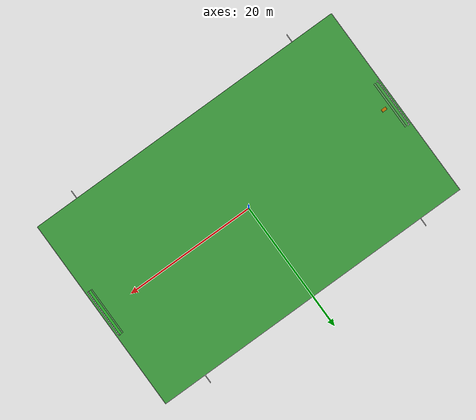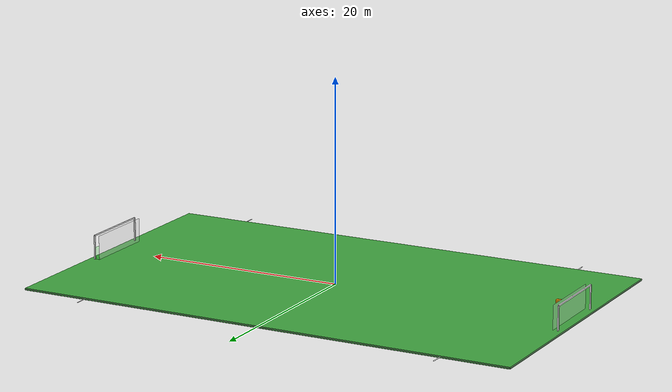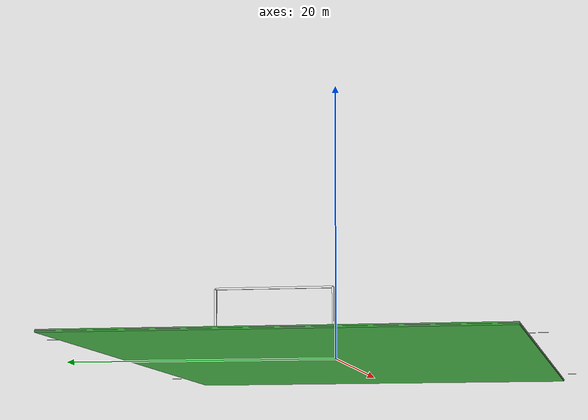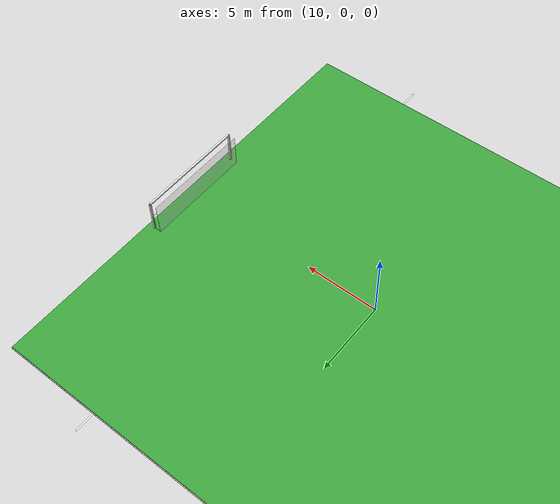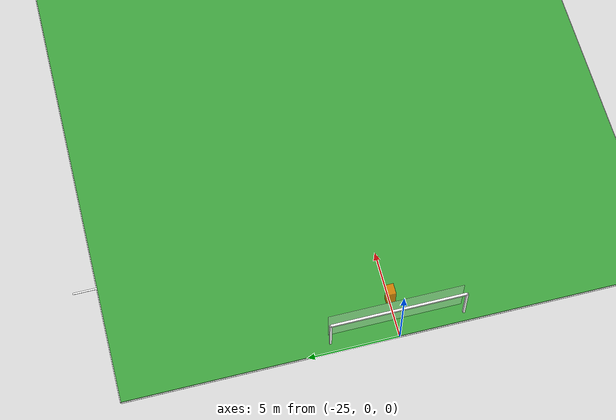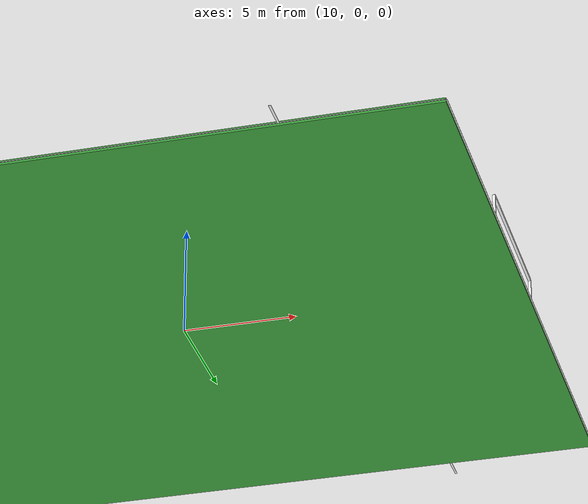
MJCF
<mujoco model="soccer_field">
  <compiler angle="radian" coordinate="local" inertiafromgeom="true"/>

  <default>
    <geom conaffinity="1" condim="3" density="1000" friction="1.2 0.6 0.6" margin="0.01"/>
  </default>

  <asset>
    <texture builtin="gradient" height="100" rgb1="0.4 0.6 1.0" rgb2="0.8 0.9 1.0" type="skybox" width="100"/>
    <texture builtin="checker" height="512" name="grass_texture" rgb1="0.2 0.6 0.2" rgb2="0.3 0.7 0.3" type="2d" width="512"/>
    <texture builtin="flat" height="32" name="goal_texture" rgb1="1 1 1" rgb2="1 1 1" type="2d" width="32"/>
    <texture builtin="flat" height="32" name="line_texture" rgb1="1 1 1" rgb2="1 1 1" type="2d" width="32"/>

    <material name="grass" reflectance="0.3" shininess="0.1" specular="0.1" texrepeat="50 30" texture="grass_texture"/>
    <material name="goal_material" reflectance="0.1" shininess="0.1" specular="0.1" texture="goal_texture"/>
    <material name="line_material" reflectance="0.1" shininess="0.1" specular="0.1" texture="line_texture"/>
  </asset>

  <worldbody>
    <!-- Ground plane (soccer field) -->
    <geom name="field" pos="0 0 0" size="25 15 0.1" type="box" material="grass"/>

    <!-- Simple field boundaries - just lines on the ground -->
    <geom name="boundary_north" pos="0 15 0.01" size="25 0.05 0.01" type="box" material="line_material" contype="0" conaffinity="0"/>
    <geom name="boundary_south" pos="0 -15 0.01" size="25 0.05 0.01" type="box" material="line_material" contype="0" conaffinity="0"/>
    <geom name="boundary_east" pos="25 0 0.01" size="0.05 15 0.01" type="box" material="line_material" contype="0" conaffinity="0"/>
    <geom name="boundary_west" pos="-25 0 0.01" size="0.05 15 0.01" type="box" material="line_material" contype="0" conaffinity="0"/>

    <!-- Goal posts - East goal (target for robot) -->
    <body name="east_goal" pos="24.5 0 0">
      <geom name="east_goal_left_post" pos="0 -3.66 1.22" size="0.06 0.06 1.22" type="box" material="goal_material"/>
      <geom name="east_goal_right_post" pos="0 3.66 1.22" size="0.06 0.06 1.22" type="box" material="goal_material"/>
      <geom name="east_goal_crossbar" pos="0 0 2.44" size="0.06 3.66 0.06" type="box" material="goal_material"/>
      <geom name="east_goal_net_back" pos="-0.5 0 1.22" size="0.02 3.66 1.22" type="box" rgba="1 1 1 0.3"/>

      <!-- Goal detection zone -->
      <geom name="east_goal_zone" pos="-0.25 0 0.61" size="0.25 3.66 0.61" type="box" rgba="0 1 0 0.1" contype="0" conaffinity="0"/>
    </body>

    <!-- Goal posts - West goal (opponent goal) -->
    <body name="west_goal" pos="-24.5 0 0">
      <geom name="west_goal_left_post" pos="0 -3.66 1.22" size="0.06 0.06 1.22" type="box" material="goal_material"/>
      <geom name="west_goal_right_post" pos="0 3.66 1.22" size="0.06 0.06 1.22" type="box" material="goal_material"/>
      <geom name="west_goal_crossbar" pos="0 0 2.44" size="0.06 3.66 0.06" type="box" material="goal_material"/>
      <geom name="west_goal_net_back" pos="0.5 0 1.22" size="0.02 3.66 1.22" type="box" rgba="1 1 1 0.3"/>
    </body>

    <!-- Center circle - just a thin line on the ground -->
    <geom name="center_circle" pos="0 0 0.01" size="4.57 0.05 0.01" type="box" material="line_material" contype="0" conaffinity="0"/>

    <!-- Penalty areas -->
    <!-- East penalty area -->
    <geom name="east_penalty_line_1" pos="18.32 -8.16 0.01" size="0.05 8.16 0.01" type="box" material="line_material" contype="0" conaffinity="0"/>
    <geom name="east_penalty_line_2" pos="18.32 8.16 0.01" size="0.05 8.16 0.01" type="box" material="line_material" contype="0" conaffinity="0"/>
    <geom name="east_penalty_line_3" pos="12.84 0 0.01" size="5.48 0.05 0.01" type="box" material="line_material" contype="0" conaffinity="0"/>

    <!-- West penalty area -->
    <geom name="west_penalty_line_1" pos="-18.32 -8.16 0.01" size="0.05 8.16 0.01" type="box" material="line_material" contype="0" conaffinity="0"/>
    <geom name="west_penalty_line_2" pos="-18.32 8.16 0.01" size="0.05 8.16 0.01" type="box" material="line_material" contype="0" conaffinity="0"/>
    <geom name="west_penalty_line_3" pos="-12.84 0 0.01" size="5.48 0.05 0.01" type="box" material="line_material" contype="0" conaffinity="0"/>

    <!-- Goal areas -->
    <!-- East goal area -->
    <geom name="east_goal_area_1" pos="22.86 -2.74 0.01" size="0.05 2.74 0.01" type="box" material="line_material" contype="0" conaffinity="0"/>
    <geom name="east_goal_area_2" pos="22.86 2.74 0.01" size="0.05 2.74 0.01" type="box" material="line_material" contype="0" conaffinity="0"/>
    <geom name="east_goal_area_3" pos="21.04 0 0.01" size="1.82 0.05 0.01" type="box" material="line_material" contype="0" conaffinity="0"/>

    <!-- West goal area -->
    <geom name="west_goal_area_1" pos="-22.86 -2.74 0.01" size="0.05 2.74 0.01" type="box" material="line_material" contype="0" conaffinity="0"/>
    <geom name="west_goal_area_2" pos="-22.86 2.74 0.01" size="0.05 2.74 0.01" type="box" material="line_material" contype="0" conaffinity="0"/>
    <geom name="west_goal_area_3" pos="-21.04 0 0.01" size="1.82 0.05 0.01" type="box" material="line_material" contype="0" conaffinity="0"/>

    <!-- Center line -->
    <geom name="center_line" pos="0 0 0.01" size="0.05 15 0.01" type="box" material="line_material" contype="0" conaffinity="0"/>

    <!-- Corner arcs removed for cleaner field -->

    <!-- Opponent goalkeeper (simple moving obstacle) -->
    <body name="opponent_goalkeeper" pos="-23 0 0.9">
      <geom name="goalkeeper_body" pos="0 0 0" size="0.3 0.2 0.9" type="box" rgba="1 0.5 0 0.8"/>
      <joint name="goalkeeper_y" type="slide" axis="0 1 0" range="-3.66 3.66" damping="10"/>
    </body>

    <!-- Simple lighting -->
    <light cutoff="100" diffuse="1 1 1" dir="0 0 -1" directional="true" exponent="1" pos="0 0 20" specular="0.3 0.3 0.3"/>
  </worldbody>

  <!-- Sensors for field conditions -->
  <sensor>
    <framepos name="east_goal_sensor" objtype="geom" objname="east_goal_zone"/>
    <framepos name="opponent_pos" objtype="body" objname="opponent_goalkeeper"/>
  </sensor>
</mujoco>
